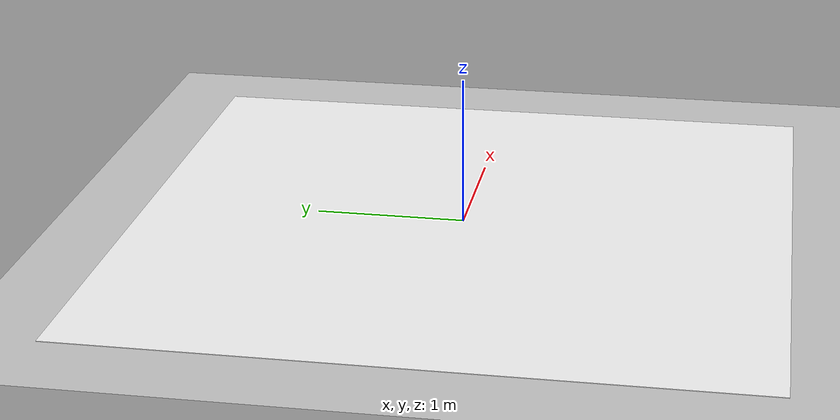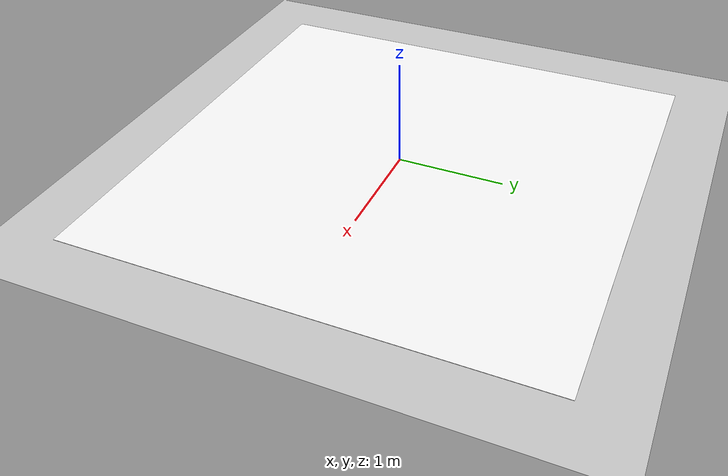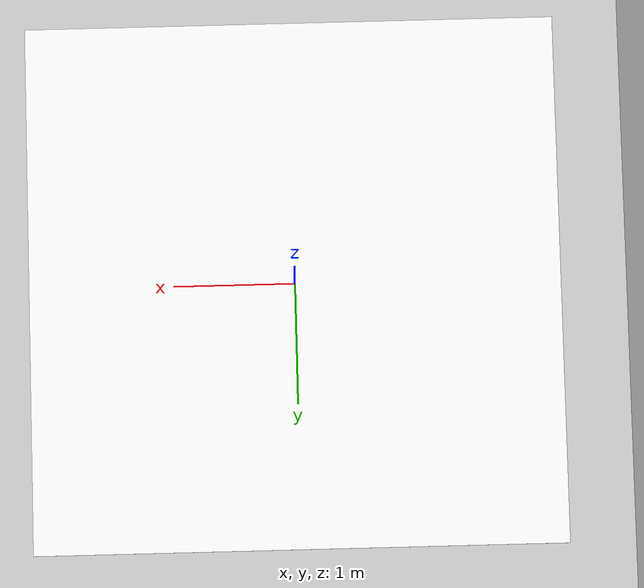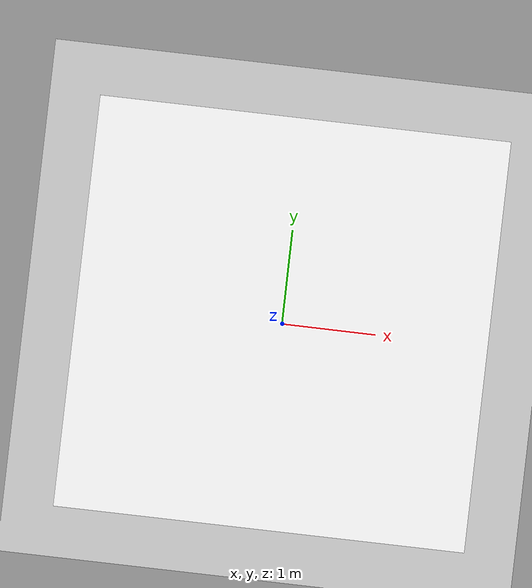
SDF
<?xml version="1.0"?>
<sdf version="1.9">
  <world name="line_follower_world">

    <!-- ====== Gz Harmonic system plugins ====== -->
    <plugin filename="gz-sim-physics-system"
            name="gz::sim::systems::Physics">
    </plugin>
    <plugin filename="gz-sim-scene-broadcaster-system"
            name="gz::sim::systems::SceneBroadcaster">
    </plugin>
    <plugin filename="gz-sim-user-commands-system"
            name="gz::sim::systems::UserCommands">
    </plugin>
    <plugin filename="gz-sim-sensors-system"
            name="gz::sim::systems::Sensors">
      <render_engine>ogre2</render_engine>
    </plugin>
    <plugin filename="gz-sim-imu-system"
            name="gz::sim::systems::Imu">
    </plugin>
    <plugin filename="gz-sim-contact-system"
            name="gz::sim::systems::Contact">
    </plugin>

    <!-- ====== Physics ====== -->
    <physics name="1ms" type="ode">
      <max_step_size>0.001</max_step_size>
      <real_time_factor>1</real_time_factor>
      <real_time_update_rate>1000</real_time_update_rate>
      <ode>
        <solver>
          <type>quick</type>
          <iters>150</iters>
          <sor>1.4</sor>
        </solver>
        <constraints>
          <cfm>0.00001</cfm>
          <erp>0.2</erp>
          <contact_max_correcting_vel>2000.0</contact_max_correcting_vel>
          <contact_surface_layer>0.01</contact_surface_layer>
        </constraints>
      </ode>
    </physics>

    <!-- ====== Scene ====== -->
    <scene>
      <ambient>0.4 0.4 0.4 1</ambient>
      <background>0.7 0.7 0.7 1</background>
      <shadows>false</shadows>
    </scene>

    <!-- ====== Sun ====== -->
    <light type="directional" name="sun">
      <cast_shadows>false</cast_shadows>
      <pose>0 0 10 0 0 0</pose>
      <diffuse>0.8 0.8 0.8 1</diffuse>
      <specular>0.2 0.2 0.2 1</specular>
      <attenuation>
        <range>1000</range>
        <constant>0.9</constant>
        <linear>0.01</linear>
        <quadratic>0.001</quadratic>
      </attenuation>
      <direction>-0.5 0.1 -0.9</direction>
    </light>

    <!-- ====== Ground Plane ====== -->
    <model name="ground_plane">
      <static>true</static>
      <link name="link">
        <collision name="collision">
          <geometry>
            <plane>
              <normal>0 0 1</normal>
              <size>100 100</size>
            </plane>
          </geometry>
        </collision>
        <visual name="visual">
          <geometry>
            <plane>
              <normal>0 0 1</normal>
              <size>100 100</size>
            </plane>
          </geometry>
          <material>
            <ambient>0.8 0.8 0.8 1</ambient>
            <diffuse>0.8 0.8 0.8 1</diffuse>
            <specular>0.8 0.8 0.8 1</specular>
          </material>
        </visual>
      </link>
    </model>

    <!-- ====== Track ====== -->
    <include>
      <pose>0 0 0.002 0 0 0</pose>
      <uri>model://track2</uri>
    </include>

    <!-- ====== Robot ====== -->
    <include>
      <pose>-0.5 -1.85 0.01 0 0 0</pose>
      <uri>model://custom_turtlebot</uri>
    </include>

  </world>
</sdf>

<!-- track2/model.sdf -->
<sdf version="1.9">
  <model name="track2">
    <static>true</static>
    <link name="link">
      <collision name="collision">
        <geometry>
          <plane>
            <normal>0 0 1</normal>
            <size>4.4 4.4</size>
          </plane>
        </geometry>
      </collision>
      <visual name="visual">
        <cast_shadows>false</cast_shadows>
        <geometry>
          <plane>
            <normal>0 0 1</normal>
            <size>4.4 4.4</size>
          </plane>
        </geometry>
        <material>
          <!-- Gz Harmonic uses PBR or direct texture URIs instead of Ogre material scripts -->
          <ambient>1 1 1 1</ambient>
          <diffuse>1 1 1 1</diffuse>
          <specular>0.03 0.03 0.03 1</specular>
          <pbr>
            <metal>
              <albedo_map>materials/textures/Track2.png</albedo_map>
            </metal>
          </pbr>
        </material>
      </visual>
    </link>
  </model>
</sdf>

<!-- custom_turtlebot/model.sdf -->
<sdf version="1.9">

  <model name="custom_turtlebot">
    <pose>0 0 0 0 0 0</pose>

    <!-- BASE LINK                                                 -->
    <link name="base_link">

      <collision name="base_collision">
        <geometry>
          <box>

            <size>TODO: length width height</size>

          </box>
        </geometry>
      </collision>

    </link>

    <!-- IMU SENSOR                                                -->
    <link name="imu_link">

      <sensor name="imu" type="imu">
        <always_on>true</always_on>

        <update_rate>TODO</update_rate>

        <imu>

          <angular_velocity>
            <x><noise><stddev>TODO</stddev></noise></x>
            <y><noise><stddev>TODO</stddev></noise></y>
            <z><noise><stddev>TODO</stddev></noise></z>
          </angular_velocity>

        </imu>
      </sensor>
    </link>

    <!-- WHEELS (CRITICAL FOR CONTROL BEHAVIOR)                    -->
    <link name="wheel_left_link">

      <geometry>
        <cylinder>
          <radius>TODO</radius>
          <length>TODO</length>
        </cylinder>
      </geometry>

      <surface>
        <friction>
          <mu>TODO</mu>
          <mu2>TODO</mu2>
        </friction>

        <contact>
          <ode>
            <kp>TODO</kp>
            <kd>TODO</kd>
            <soft_erp>TODO</soft_erp>
          </ode>
        </contact>

      </surface>

    </link>

    <!-- CAMERA (MOST CRITICAL FOR PERCEPTION)                     -->
    <link name="camera_rgb_optical_frame">

      <sensor name="camera" type="camera">

        <update_rate>TODO</update_rate>

        <camera>

          <horizontal_fov>TODO</horizontal_fov>

          <noise>
            <stddev>TODO</stddev>
          </noise>

        </camera>
      </sensor>
    </link>

    <!-- DIFF DRIVE CONTROLLER (CONTROL CORE)                      -->
    <plugin filename="gz-sim-diff-drive-system"
            name="gz::sim::systems::DiffDrive">

      <wheel_separation>TODO</wheel_separation>

      <wheel_radius>TODO</wheel_radius>

      <max_linear_acceleration>TODO</max_linear_acceleration>

      <topic>cmd_vel</topic>
      <odom_topic>odom</odom_topic>

    </plugin>

  </model>
</sdf>
